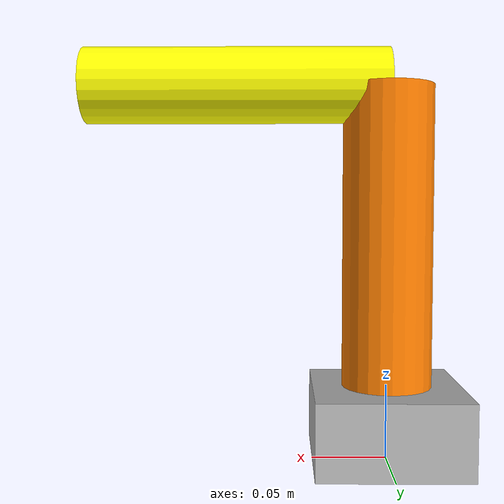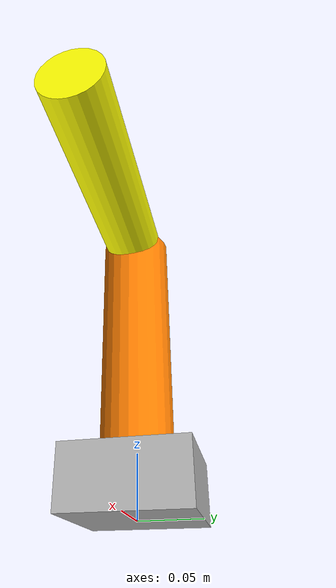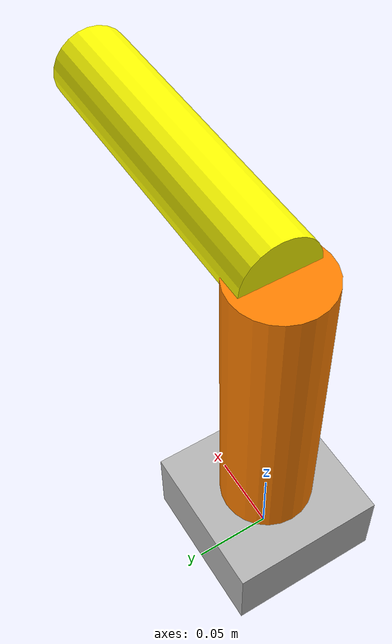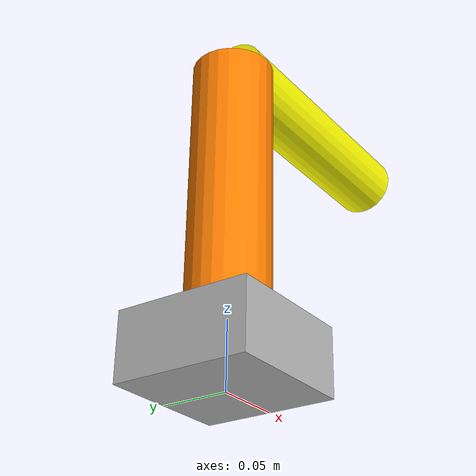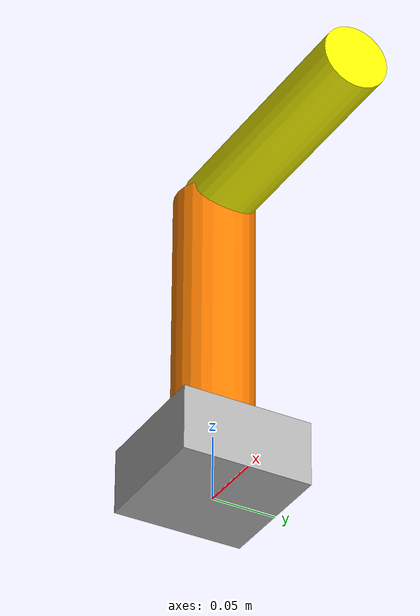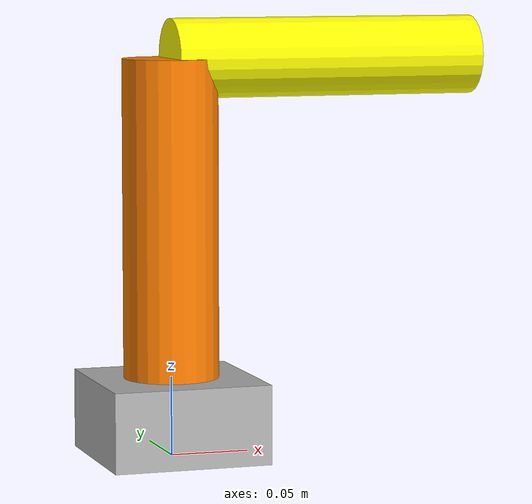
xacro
<?xml version="1.0"?>
<robot xmlns:xacro="http://www.ros.org/wiki/xacro"  name="unitree_arm">

    <xacro:include filename="../unitree_arm_description.xacro" />
    <xacro:include filename="mock_arm_ros2_control.xacro" />

    <!--生成物理模型-->
    <xacro:unitree_arm_description />

    <!--配置硬件接口-->
    <xacro:mock_arm_ros2_control name="MockSystem" />

</robot>

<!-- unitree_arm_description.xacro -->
<robot xmlns:xacro="http://www.ros.org/wiki/xacro">

    <xacro:include filename="inertial_macros.xacro"/>

    <xacro:property name="base_length" value="0.05"/>
    <xacro:property name="base_width" value="0.1"/>
    <xacro:property name="base_depth" value="0.1"/>

    <xacro:property name="link1_length" value="0.2"/>
    <xacro:property name="link1_radius" value="0.03"/>

    <xacro:property name="link2_length" value="0.2"/>
    <xacro:property name="link2_radius" value="0.025"/>

    <material name="grey">
        <color rgba="0.7 0.7 0.7 1.0"/>
    </material>

    <material name="orange">
        <color rgba="1.0 0.5 0.0 1.0"/>
    </material>

    <material name="yellow">
        <color rgba="1.0 1.0 0.0 1.0"/>
    </material>

    <xacro:macro name="unitree_arm_description">

        <link name="base_link">
            <visual>
                <origin xyz="0 0 ${base_length/2}" rpy="0 0 0"/>
                <geometry>
                    <box size="${base_width} ${base_depth} ${base_length}"/>
                </geometry>
                <material name="grey"/>
            </visual>
            <collision>
                <origin xyz="0 0 ${base_length/2}" rpy="0 0 0"/>
                <geometry>
                    <box size="${base_width} ${base_depth} ${base_length}"/>
                </geometry>
            </collision>
            <xacro:inertial_box mass="2.0" x="${base_width}" y="${base_depth}" z="${base_length}">
                <origin xyz="0 0 ${base_length/2}" rpy="0 0 0"/>
            </xacro:inertial_box>
        </link>

        <joint name="joint1" type="revolute">
            <parent link="base_link"/>
            <child link="link1"/>
            <origin xyz="0 0 ${base_length}" rpy="0 0 0"/>
            <axis xyz="0 0 1"/>
            <limit lower="-3.14" upper="3.14" effort="30.0" velocity="10.0"/>
        </joint>

        <link name="link1">
            <visual>
                <origin xyz="0 0 ${link1_length/2}" rpy="0 0 0"/>
                <geometry>
                    <cylinder radius="${link1_radius}" length="${link1_length}"/>
                </geometry>
                <material name="orange"/>
            </visual>
            <collision>
                <origin xyz="0 0 ${link1_length/2}" rpy="0 0 0"/>
                <geometry>
                    <cylinder radius="${link1_radius}" length="${link1_length}"/>
                </geometry>
            </collision>
            <xacro:inertial_cylinder mass="1.0" length="${link1_length}" radius="${link1_radius}">
                <origin xyz="0 0 ${link1_length/2}" rpy="0 0 0"/>
            </xacro:inertial_cylinder>
        </link>

        <joint name="joint2" type="revolute">
            <parent link="link1"/>
            <child link="link2"/>
            <origin xyz="0 0 ${link1_length}" rpy="0 1.57 0"/>
            <axis xyz="0 1 0"/>
            <limit lower="-2.0" upper="2.0" effort="30.0" velocity="10.0"/>
        </joint>

        <link name="link2">
            <visual>
                <origin xyz="0 0 ${link2_length/2}" rpy="0 0 0"/>
                <geometry>
                    <cylinder radius="${link2_radius}" length="${link2_length}"/>
                </geometry>
                <material name="yellow"/>
            </visual>
            <collision>
                <origin xyz="0 0 ${link2_length/2}" rpy="0 0 0"/>
                <geometry>
                    <cylinder radius="${link2_radius}" length="${link2_length}"/>
                </geometry>
            </collision>
            <xacro:inertial_cylinder mass="0.5" length="${link2_length}" radius="${link2_radius}">
                <origin xyz="0 0 ${link2_length/2}" rpy="0 0 0"/>
            </xacro:inertial_cylinder>
        </link>

    </xacro:macro>

</robot>

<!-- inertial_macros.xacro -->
<robot xmlns:xacro="http://www.ros.org/wiki/xacro">

    <xacro:macro name="inertial_cylinder" params="mass length radius *origin">
        <inertial>
            <xacro:insert_block name="origin"/>
            <mass value="${mass}" />
            <inertia ixx="${(1/12) * mass * (3*radius*radius + length*length)}" ixy="0.0" ixz="0.0"
                     iyy="${(1/12) * mass * (3*radius*radius + length*length)}" iyz="0.0"
                     izz="${(1/2) * mass * (radius*radius)}" />
        </inertial>
    </xacro:macro>

    <xacro:macro name="inertial_box" params="mass x y z *origin">
        <inertial>
            <xacro:insert_block name="origin"/>
            <mass value="${mass}" />
            <inertia ixx="${(1/12) * mass * (y*y + z*z)}" ixy="0.0" ixz="0.0"
                     iyy="${(1/12) * mass * (x*x + z*z)}" iyz="0.0"
                     izz="${(1/12) * mass * (x*x + y*y)}" />
        </inertial>
    </xacro:macro>

</robot>
